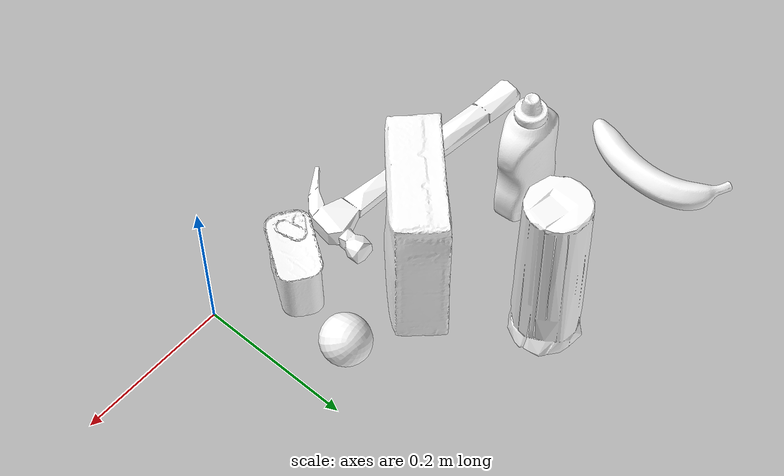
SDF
<sdf version="1.6">
  <world name="default">
  <gravity>0 0 -9.8</gravity>
  	<model name="YcbHammer">
      <pose frame=''>-0.33615 0.01794 0.0 0 0 1.57</pose>
      <link name="baselink">
        <contact>
          <lateral_friction>0.3</lateral_friction>
          <rolling_friction>0.001</rolling_friction>
          <contact_cfm>0.0</contact_cfm>
          <contact_erp>1.0</contact_erp>
        </contact>
        <inertial>
          <pose frame=''>0.02 -0.01 0.01 0.0 0.0 0.0</pose>
            <mass>0.665</mass>
            <inertia>
                <ixx>1e-3</ixx>
                <ixy>0</ixy>
                <ixz>0</ixz>
                <iyy>1e-3</iyy>
                <iyz>0</iyz>
                <izz>1e-3</izz>
            </inertia>
        </inertial>
        <visual name="visual">
            <geometry>
                <mesh>
                    <scale>1 1 1</scale>
                    <uri>YcbHammer/textured_reoriented.obj</uri>
                </mesh>
            </geometry>
            <material>
      				<ambient>1 1 1 1</ambient>
      				<diffuse>1.00000 1.00000 1.000000 1</diffuse>
      				<specular>.5 .5 .5 1</specular>
      				<emissive>0 0 0 0</emissive>
      			</material>
        </visual>
        <collision name="collision">
            <geometry>
                <mesh>
                    <scale>1 1 1</scale>
                    <uri>YcbHammer/collision_vhacd.obj</uri>
                </mesh>
            </geometry>
        </collision>
      </link>
  	</model>
  	<model name="YcbTennisBall">
      <pose frame=''>-0.05479 0.16116 0.0 0 0 1.9444334</pose>
      <link name="baselink">
        <contact>
          <lateral_friction>0.8</lateral_friction>
          <rolling_friction>0.001</rolling_friction>
          <spinning_friction>0.001</spinning_friction>
          <contact_cfm>0.0</contact_cfm>
          <contact_erp>1.0</contact_erp>
        </contact>
        <inertial>
          <pose frame=''>0.0 0.005 0.03 0.0 0.0 0.0</pose>
            <mass>0.058</mass>
            <inertia>
                <ixx>1e-3</ixx>
                <ixy>0</ixy>
                <ixz>0</ixz>
                <iyy>1e-3</iyy>
                <iyz>0</iyz>
                <izz>1e-3</izz>
            </inertia>
        </inertial>
        <visual name="visual">
            <geometry>
                <mesh>
                    <scale>1 1 1</scale>
                    <uri>YcbTennisBall/textured_reoriented.obj</uri>
                </mesh>
            </geometry>
            <material>
      				<ambient>1 1 1 1</ambient>
      				<diffuse>1.00000 1.00000 1.000000 1</diffuse>
      				<specular>.5 .5 .5 1</specular>
      				<emissive>0 0 0 0</emissive>
      			</material>
        </visual>
        <collision name="collision">
            <geometry>
                <mesh>
                    <scale>1 1 1</scale>
                    <uri>YcbTennisBall/collision_vhacd.obj</uri>
                </mesh>
            </geometry>
        </collision>
      </link>
  	</model>
  	<model name="YcbChipsCan">
      <pose frame=''>-0.25920 0.30439 0.0 0 0 -1.7217267</pose>
      <link name="baselink">
        <contact>
          <lateral_friction>0.5</lateral_friction>
          <rolling_friction>0.001</rolling_friction>
          <spinning_friction>0.001</spinning_friction>
          <contact_cfm>0.0</contact_cfm>
          <contact_erp>1.0</contact_erp>
        </contact>
        <inertial>
          <pose frame=''>-0.005 0.01 0.1 0.0 0.0 0.0</pose>
            <mass>0.205</mass>
            <inertia>
                <ixx>1e-3</ixx>
                <ixy>0</ixy>
                <ixz>0</ixz>
                <iyy>1e-3</iyy>
                <iyz>0</iyz>
                <izz>1e-3</izz>
            </inertia>
        </inertial>
        <visual name="visual">
            <geometry>
                <mesh>
                    <scale>1 1 1</scale>
                    <uri>YcbChipsCan/textured.obj</uri>
                </mesh>
            </geometry>
            <material>
      				<ambient>1 1 1 1</ambient>
      				<diffuse>1.00000 1.00000 1.000000 1</diffuse>
      				<specular>.5 .5 .5 1</specular>
      				<emissive>0 0 0 0</emissive>
      			</material>
        </visual>
        <collision name="collision">
            <geometry>
                <mesh>
                    <scale>1 1 1</scale>
                    <uri>YcbChipsCan/collision_vhacd.obj</uri>
                </mesh>
            </geometry>
        </collision>
      </link>
  	</model>
	  <model name="YcbBanana">
      <pose frame=''>-0.5 0.28849 0.0 0 0 -1.5707963</pose>
      <link name="baselink">
        <contact>
          <lateral_friction>0.3</lateral_friction>
          <rolling_friction>0.001</rolling_friction>
          <contact_cfm>0.0</contact_cfm>
          <contact_erp>1.0</contact_erp>
        </contact>
        <inertial>
          <pose frame=''>0.01 0.0 0.01 0.0 0.0 0.0</pose>
            <mass>0.066</mass>
            <inertia>
                <ixx>1e-3</ixx>
                <ixy>0</ixy>
                <ixz>0</ixz>
                <iyy>1e-3</iyy>
                <iyz>0</iyz>
                <izz>1e-3</izz>
            </inertia>
        </inertial>
        <visual name="visual">
            <geometry>
                <mesh>
                    <scale>1 1 1</scale>
                    <uri>YcbBanana/textured_simple_reoriented.obj</uri>
                </mesh>
            </geometry>
            <material>
      				<ambient>1 1 1 1</ambient>
      				<diffuse>1.00000 1.00000 1.000000 1</diffuse>
      				<specular>.5 .5 .5 1</specular>
      				<emissive>0 0 0 0</emissive>
      			</material>
        </visual>
        <collision name="collision">
            <geometry>
                <mesh>
                    <scale>1 1 1</scale>
                    <uri>YcbBanana/collision_vhacd.obj</uri>
                </mesh>
            </geometry>
        </collision>
      </link>
  	</model>
    <model name="YcbMustardBottle">
        <pose frame=''>-0.39456 0.16899 0.07 0 0 0</pose>
        <link name="baselink">
        <contact>
          <lateral_friction>0.8</lateral_friction>
          <rolling_friction>0.001</rolling_friction>
          <spinning_friction>0.001</spinning_friction>
          <contact_cfm>0.0</contact_cfm>
          <contact_erp>1.0</contact_erp>
        </contact>
          <inertial>
          <pose frame=''>0.005 -0.005 -0.015 0.0 0.0 0.1</pose>
              <mass>0.603</mass>
              <inertia>
                  <ixx>1e-3</ixx>
                  <ixy>0</ixy>
                  <ixz>0</ixz>
                  <iyy>1e-3</iyy>
                  <iyz>0</iyz>
                  <izz>1e-3</izz>
              </inertia>
          </inertial>
          <visual name="visual">
              <geometry>
                  <mesh>
                      <scale>1 1 1</scale>
                      <uri>YcbMustardBottle/textured_simple_reoriented.obj</uri>
                  </mesh>
              </geometry>
              <material>
        				<ambient>1 1 1 1</ambient>
        				<diffuse>1.00000 1.00000 1.000000 1</diffuse>
        				<specular>.5 .5 .5 1</specular>
        				<emissive>0 0 0 0</emissive>
        			</material>
          </visual>
          <collision name="collision">
              <geometry>
                  <mesh>
                      <scale>1 1 1</scale>
                      <uri>YcbMustardBottle/collision_vhacd.obj</uri>
                  </mesh>
              </geometry>
          </collision>
        </link>
    </model>
    <model name="YcbPottedMeatCan">
          <pose frame=''>-0.110 0.04439 0.047 0 0 -1.5707963</pose>
          <link name="baselink">
        <contact>
          <lateral_friction>0.6</lateral_friction>
          <rolling_friction>0.00</rolling_friction>
          <contact_cfm>0.0</contact_cfm>
          <contact_erp>1.0</contact_erp>
        </contact>
            <inertial>
              <pose frame=''>0 0.012 -0.01 0 0 -0.5</pose>
                <mass>0.370</mass>
                <inertia>
                    <ixx>1e-3</ixx>
                    <ixy>0</ixy>
                    <ixz>0</ixz>
                    <iyy>1e-3</iyy>
                    <iyz>0</iyz>
                    <izz>1e-3</izz>
                </inertia>
            </inertial>
            <visual name="visual">
                <geometry>
                    <mesh>
                        <scale>1 1 1</scale>
                        <uri>YcbPottedMeatCan/textured_simple_reoriented.obj</uri>
                    </mesh>
                </geometry>
                <material>
                  <ambient>1 1 1 1</ambient>
                  <diffuse>1.00000 1.00000 1.000000 1</diffuse>
                  <specular>.5 .5 .5 1</specular>
                  <emissive>0 0 0 0</emissive>
                </material>
            </visual>
            <collision name="collision">
                <geometry>
                    <mesh>
                        <scale>1 1 1</scale>
                        <uri>YcbPottedMeatCan/collision_vhacd.obj</uri>
                    </mesh>
                </geometry>
            </collision>
          </link>
      </model>
      <model name="YcbCrackerBox">
          <pose frame=''>-0.18920 0.19439 0.15 0 0 -0.785</pose>
          <link name="baselink">
        <contact>
          <lateral_friction>0.5</lateral_friction>
          <contact_cfm>0.0</contact_cfm>
          <contact_erp>1.0</contact_erp>
        </contact>
            <inertial>
				<pose frame=''>0.03 -0.01 -0.02 0 0 0</pose>
                <mass>0.411</mass>
                <inertia>
                    <ixx>1e-3</ixx>
                    <ixy>0</ixy>
                    <ixz>0</ixz>
                    <iyy>1e-3</iyy>
                    <iyz>0</iyz>
                    <izz>1e-3</izz>
                </inertia>
            </inertial>
            <visual name="visual">
                <geometry>
                    <mesh>
                        <scale>1 1 1</scale>
                        <uri>YcbCrackerBox/textured_simple_reoriented.obj</uri>
                    </mesh>
                </geometry>
                <material>
                  <ambient>1 1 1 1</ambient>
                  <diffuse>1.00000 1.00000 1.000000 1</diffuse>
                  <specular>.5 .5 .5 1</specular>
                  <emissive>0 0 0 0</emissive>
                </material>
            </visual>
            <collision name="collision">
                <geometry>
                    <mesh>
                        <scale>1 1 1</scale>
                        <uri>YcbCrackerBox/collision_vhacd.obj</uri>
                    </mesh>
                </geometry>
            </collision>
          </link>
      </model>
  </world>
</sdf>
